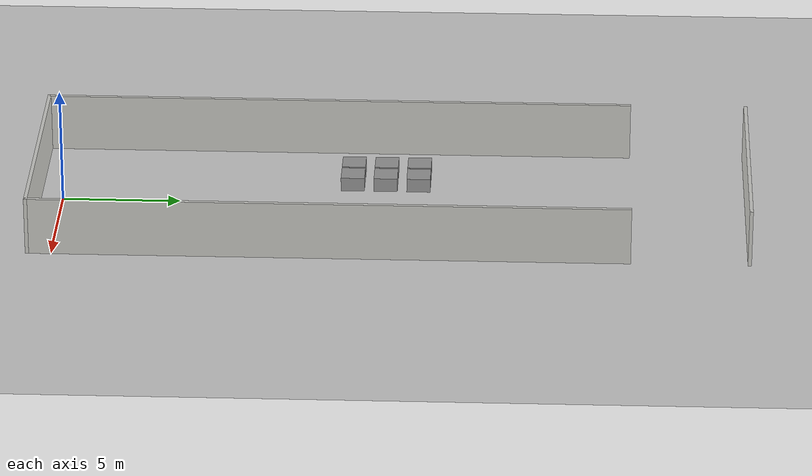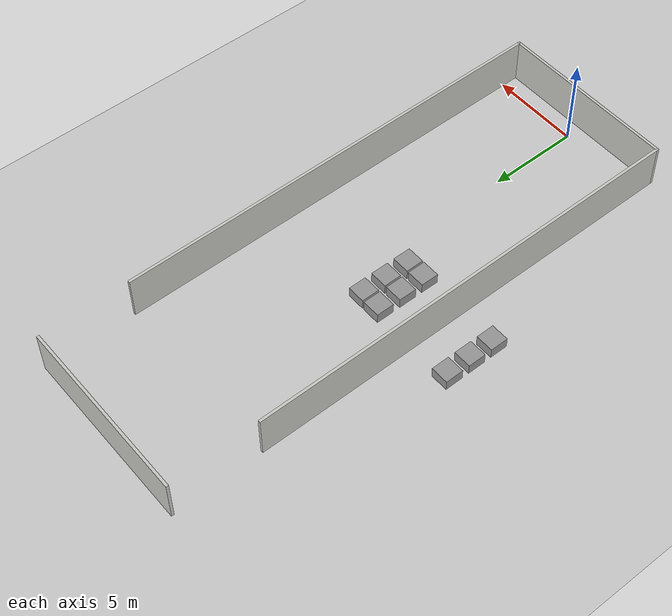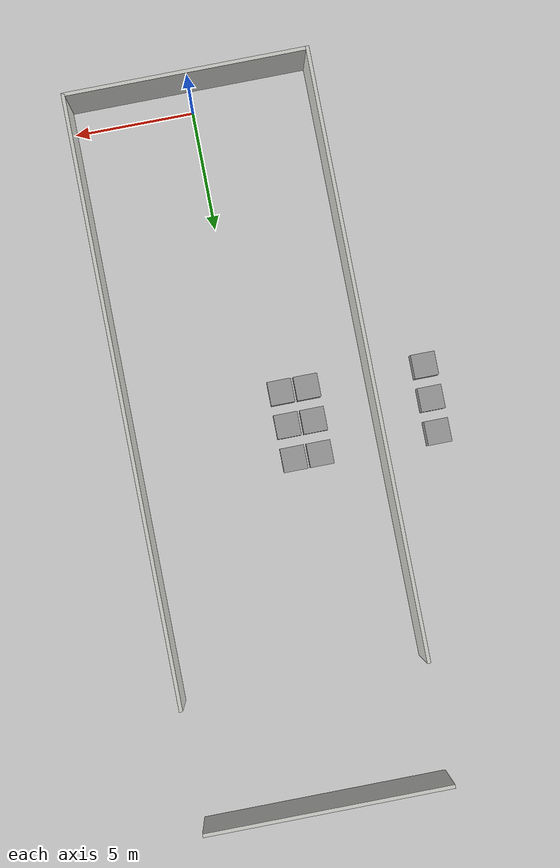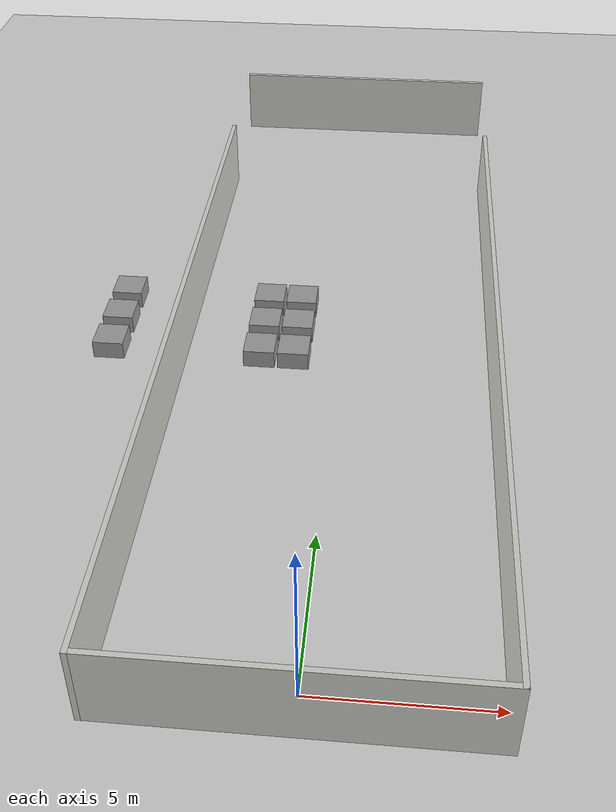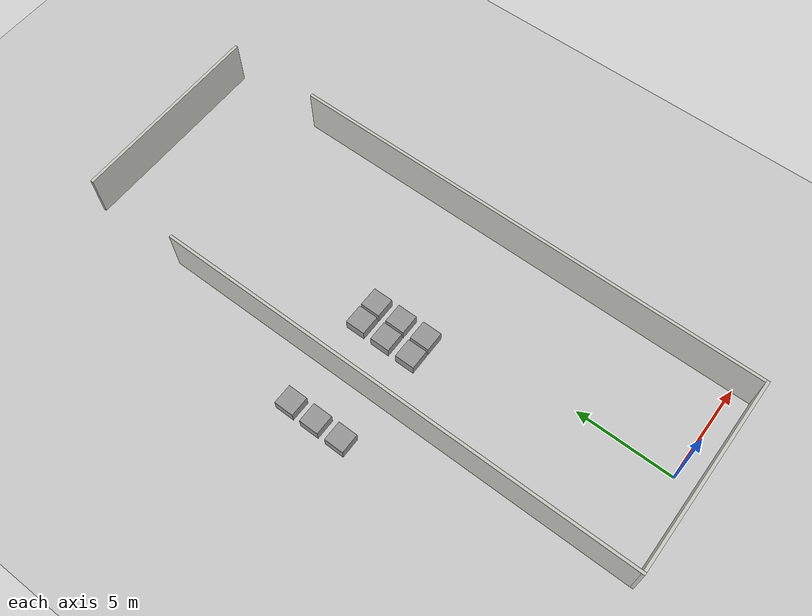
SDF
<sdf version="1.6">
 <world name="default">
  <model name="ground_plane">
   <static>1</static>
   <link name="link">
    <collision name="collision">
     <geometry><plane><normal>0 0 1</normal><size>100 100</size></plane></geometry>
     <surface>
      <contact><collide_bitmask>65535</collide_bitmask></contact>
      <friction><ode><mu>100</mu><mu2>50</mu2></ode></friction>
     </surface>
    </collision>
    <visual name="visual">
     <cast_shadows>0</cast_shadows>
     <geometry><plane><normal>0 0 1</normal><size>100 100</size></plane></geometry>
     <material>
      <script><uri>file://media/materials/scripts/gazebo.material</uri><name>Gazebo/Grey</name></script>
     </material>
    </visual>
   </link>
  </model>
  <model name="Estufa-objetos">
   <link name="link_0_clone_clone_26">
    <inertial>
     <mass>1</mass>
     <inertia>
      <ixx>0.166667</ixx>
      <ixy>0</ixy>
      <ixz>0</ixz>
      <iyy>0.166667</iyy>
      <iyz>0</iyz>
      <izz>0.166667</izz>
     </inertia>
    </inertial>
    <pose>-1.4 7.3 0.5 0 -0 0</pose>
    <visual name="visual">
     <geometry><box><size>1 1 0.6</size></box></geometry>
     <material>
      <lighting>1</lighting>
      <script><uri>file://media/materials/scripts/gazebo.material</uri><name>Gazebo/Grey</name></script>
      <shader type="vertex"><normal_map>__default__</normal_map></shader>
      <ambient>0.3 0.3 0.3 1</ambient>
      <diffuse>0.7 0.7 0.7 1</diffuse>
      <specular>0.01 0.01 0.01 1</specular>
      <emissive>0 0 0 1</emissive>
     </material>
    </visual>
    <collision name="collision">
     <geometry><box><size>1 1 0.6</size></box></geometry>
     <surface>
      <friction>
       <ode><mu>1</mu><mu2>1</mu2><fdir1>0 0 0</fdir1><slip1>0</slip1><slip2>0</slip2></ode>
       <torsional>
        <coefficient>1</coefficient>
        <patch_radius>0</patch_radius>
        <surface_radius>0</surface_radius>
        <use_patch_radius>1</use_patch_radius>
        <ode><slip>0</slip></ode>
       </torsional>
      </friction>
      <bounce><restitution_coefficient>0</restitution_coefficient><threshold>1e+06</threshold></bounce>
      <contact>
       <collide_without_contact>0</collide_without_contact>
       <collide_without_contact_bitmask>1</collide_without_contact_bitmask>
       <collide_bitmask>1</collide_bitmask>
       <ode>
        <soft_cfm>0</soft_cfm>
        <soft_erp>0.2</soft_erp>
        <kp>1e+13</kp>
        <kd>1</kd>
        <max_vel>0.01</max_vel>
        <min_depth>0</min_depth>
       </ode>
       <bullet>
        <split_impulse>1</split_impulse>
        <split_impulse_penetration_threshold>-0.01</split_impulse_penetration_threshold>
        <soft_cfm>0</soft_cfm>
        <soft_erp>0.2</soft_erp>
        <kp>1e+13</kp>
        <kd>1</kd>
       </bullet>
      </contact>
     </surface>
    </collision>
   </link>
   <link name="link_0_clone_clone_27">
    <inertial>
     <mass>1</mass>
     <inertia>
      <ixx>0.166667</ixx>
      <ixy>0</ixy>
      <ixz>0</ixz>
      <iyy>0.166667</iyy>
      <iyz>0</iyz>
      <izz>0.166667</izz>
     </inertia>
    </inertial>
    <pose>-2.5 7.3 0.5 0 -0 0</pose>
    <visual name="visual">
     <geometry><box><size>1 1 0.6</size></box></geometry>
     <material>
      <lighting>1</lighting>
      <script><uri>file://media/materials/scripts/gazebo.material</uri><name>Gazebo/Grey</name></script>
      <shader type="vertex"><normal_map>__default__</normal_map></shader>
      <ambient>0.3 0.3 0.3 1</ambient>
      <diffuse>0.7 0.7 0.7 1</diffuse>
      <specular>0.01 0.01 0.01 1</specular>
      <emissive>0 0 0 1</emissive>
     </material>
    </visual>
    <collision name="collision">
     <geometry><box><size>1 1 0.6</size></box></geometry>
     <surface>
      <friction>
       <ode><mu>1</mu><mu2>1</mu2><fdir1>0 0 0</fdir1><slip1>0</slip1><slip2>0</slip2></ode>
       <torsional>
        <coefficient>1</coefficient>
        <patch_radius>0</patch_radius>
        <surface_radius>0</surface_radius>
        <use_patch_radius>1</use_patch_radius>
        <ode><slip>0</slip></ode>
       </torsional>
      </friction>
      <bounce><restitution_coefficient>0</restitution_coefficient><threshold>1e+06</threshold></bounce>
      <contact>
       <collide_without_contact>0</collide_without_contact>
       <collide_without_contact_bitmask>1</collide_without_contact_bitmask>
       <collide_bitmask>1</collide_bitmask>
       <ode>
        <soft_cfm>0</soft_cfm>
        <soft_erp>0.2</soft_erp>
        <kp>1e+13</kp>
        <kd>1</kd>
        <max_vel>0.01</max_vel>
        <min_depth>0</min_depth>
       </ode>
       <bullet>
        <split_impulse>1</split_impulse>
        <split_impulse_penetration_threshold>-0.01</split_impulse_penetration_threshold>
        <soft_cfm>0</soft_cfm>
        <soft_erp>0.2</soft_erp>
        <kp>1e+13</kp>
        <kd>1</kd>
       </bullet>
      </contact>
     </surface>
    </collision>
   </link>
   <link name="link_0_clone_clone_30">
    <inertial>
     <mass>1</mass>
     <inertia>
      <ixx>0.166667</ixx>
      <ixy>0</ixy>
      <ixz>0</ixz>
      <iyy>0.166667</iyy>
      <iyz>0</iyz>
      <izz>0.166667</izz>
     </inertia>
    </inertial>
    <pose>-1.4 8.7 0.5 0 -0 0</pose>
    <visual name="visual">
     <geometry><box><size>1 1 0.6</size></box></geometry>
     <material>
      <lighting>1</lighting>
      <script><uri>file://media/materials/scripts/gazebo.material</uri><name>Gazebo/Grey</name></script>
      <shader type="vertex"><normal_map>__default__</normal_map></shader>
      <ambient>0.3 0.3 0.3 1</ambient>
      <diffuse>0.7 0.7 0.7 1</diffuse>
      <specular>0.01 0.01 0.01 1</specular>
      <emissive>0 0 0 1</emissive>
     </material>
    </visual>
    <collision name="collision">
     <geometry><box><size>1 1 0.6</size></box></geometry>
     <surface>
      <friction>
       <ode><mu>1</mu><mu2>1</mu2><fdir1>0 0 0</fdir1><slip1>0</slip1><slip2>0</slip2></ode>
       <torsional>
        <coefficient>1</coefficient>
        <patch_radius>0</patch_radius>
        <surface_radius>0</surface_radius>
        <use_patch_radius>1</use_patch_radius>
        <ode><slip>0</slip></ode>
       </torsional>
      </friction>
      <bounce><restitution_coefficient>0</restitution_coefficient><threshold>1e+06</threshold></bounce>
      <contact>
       <collide_without_contact>0</collide_without_contact>
       <collide_without_contact_bitmask>1</collide_without_contact_bitmask>
       <collide_bitmask>1</collide_bitmask>
       <ode>
        <soft_cfm>0</soft_cfm>
        <soft_erp>0.2</soft_erp>
        <kp>1e+13</kp>
        <kd>1</kd>
        <max_vel>0.01</max_vel>
        <min_depth>0</min_depth>
       </ode>
       <bullet>
        <split_impulse>1</split_impulse>
        <split_impulse_penetration_threshold>-0.01</split_impulse_penetration_threshold>
        <soft_cfm>0</soft_cfm>
        <soft_erp>0.2</soft_erp>
        <kp>1e+13</kp>
        <kd>1</kd>
       </bullet>
      </contact>
     </surface>
    </collision>
   </link>
   <link name="link_0_clone_clone_31">
    <inertial>
     <mass>1</mass>
     <inertia>
      <ixx>0.166667</ixx>
      <ixy>0</ixy>
      <ixz>0</ixz>
      <iyy>0.166667</iyy>
      <iyz>0</iyz>
      <izz>0.166667</izz>
     </inertia>
    </inertial>
    <pose>-2.5 8.7 0.5 0 -0 0</pose>
    <visual name="visual">
     <geometry><box><size>1 1 0.6</size></box></geometry>
     <material>
      <lighting>1</lighting>
      <script><uri>file://media/materials/scripts/gazebo.material</uri><name>Gazebo/Grey</name></script>
      <shader type="vertex"><normal_map>__default__</normal_map></shader>
      <ambient>0.3 0.3 0.3 1</ambient>
      <diffuse>0.7 0.7 0.7 1</diffuse>
      <specular>0.01 0.01 0.01 1</specular>
      <emissive>0 0 0 1</emissive>
     </material>
    </visual>
    <collision name="collision">
     <geometry><box><size>1 1 0.6</size></box></geometry>
     <surface>
      <friction>
       <ode><mu>1</mu><mu2>1</mu2><fdir1>0 0 0</fdir1><slip1>0</slip1><slip2>0</slip2></ode>
       <torsional>
        <coefficient>1</coefficient>
        <patch_radius>0</patch_radius>
        <surface_radius>0</surface_radius>
        <use_patch_radius>1</use_patch_radius>
        <ode><slip>0</slip></ode>
       </torsional>
      </friction>
      <bounce><restitution_coefficient>0</restitution_coefficient><threshold>1e+06</threshold></bounce>
      <contact>
       <collide_without_contact>0</collide_without_contact>
       <collide_without_contact_bitmask>1</collide_without_contact_bitmask>
       <collide_bitmask>1</collide_bitmask>
       <ode>
        <soft_cfm>0</soft_cfm>
        <soft_erp>0.2</soft_erp>
        <kp>1e+13</kp>
        <kd>1</kd>
        <max_vel>0.01</max_vel>
        <min_depth>0</min_depth>
       </ode>
       <bullet>
        <split_impulse>1</split_impulse>
        <split_impulse_penetration_threshold>-0.01</split_impulse_penetration_threshold>
        <soft_cfm>0</soft_cfm>
        <soft_erp>0.2</soft_erp>
        <kp>1e+13</kp>
        <kd>1</kd>
       </bullet>
      </contact>
     </surface>
    </collision>
   </link>
   <link name="link_0_clone_clone_34">
    <inertial>
     <mass>1</mass>
     <inertia>
      <ixx>0.166667</ixx>
      <ixy>0</ixy>
      <ixz>0</ixz>
      <iyy>0.166667</iyy>
      <iyz>0</iyz>
      <izz>0.166667</izz>
     </inertia>
    </inertial>
    <pose>-1.4 10.1 0.5 0 -0 0</pose>
    <visual name="visual">
     <geometry><box><size>1 1 0.6</size></box></geometry>
     <material>
      <lighting>1</lighting>
      <script><uri>file://media/materials/scripts/gazebo.material</uri><name>Gazebo/Grey</name></script>
      <shader type="vertex"><normal_map>__default__</normal_map></shader>
      <ambient>0.3 0.3 0.3 1</ambient>
      <diffuse>0.7 0.7 0.7 1</diffuse>
      <specular>0.01 0.01 0.01 1</specular>
      <emissive>0 0 0 1</emissive>
     </material>
    </visual>
    <collision name="collision">
     <geometry><box><size>1 1 0.6</size></box></geometry>
     <surface>
      <friction>
       <ode><mu>1</mu><mu2>1</mu2><fdir1>0 0 0</fdir1><slip1>0</slip1><slip2>0</slip2></ode>
       <torsional>
        <coefficient>1</coefficient>
        <patch_radius>0</patch_radius>
        <surface_radius>0</surface_radius>
        <use_patch_radius>1</use_patch_radius>
        <ode><slip>0</slip></ode>
       </torsional>
      </friction>
      <bounce><restitution_coefficient>0</restitution_coefficient><threshold>1e+06</threshold></bounce>
      <contact>
       <collide_without_contact>0</collide_without_contact>
       <collide_without_contact_bitmask>1</collide_without_contact_bitmask>
       <collide_bitmask>1</collide_bitmask>
       <ode>
        <soft_cfm>0</soft_cfm>
        <soft_erp>0.2</soft_erp>
        <kp>1e+13</kp>
        <kd>1</kd>
        <max_vel>0.01</max_vel>
        <min_depth>0</min_depth>
       </ode>
       <bullet>
        <split_impulse>1</split_impulse>
        <split_impulse_penetration_threshold>-0.01</split_impulse_penetration_threshold>
        <soft_cfm>0</soft_cfm>
        <soft_erp>0.2</soft_erp>
        <kp>1e+13</kp>
        <kd>1</kd>
       </bullet>
      </contact>
     </surface>
    </collision>
   </link>
   <link name="link_0_clone_clone_35">
    <inertial>
     <mass>1</mass>
     <inertia>
      <ixx>0.166667</ixx>
      <ixy>0</ixy>
      <ixz>0</ixz>
      <iyy>0.166667</iyy>
      <iyz>0</iyz>
      <izz>0.166667</izz>
     </inertia>
    </inertial>
    <pose>-2.5 10.1 0.5 0 -0 0</pose>
    <visual name="visual">
     <geometry><box><size>1 1 0.6</size></box></geometry>
     <material>
      <lighting>1</lighting>
      <script><uri>file://media/materials/scripts/gazebo.material</uri><name>Gazebo/Grey</name></script>
      <shader type="vertex"><normal_map>__default__</normal_map></shader>
      <ambient>0.3 0.3 0.3 1</ambient>
      <diffuse>0.7 0.7 0.7 1</diffuse>
      <specular>0.01 0.01 0.01 1</specular>
      <emissive>0 0 0 1</emissive>
     </material>
    </visual>
    <collision name="collision">
     <geometry><box><size>1 1 0.6</size></box></geometry>
     <surface>
      <friction>
       <ode><mu>1</mu><mu2>1</mu2><fdir1>0 0 0</fdir1><slip1>0</slip1><slip2>0</slip2></ode>
       <torsional>
        <coefficient>1</coefficient>
        <patch_radius>0</patch_radius>
        <surface_radius>0</surface_radius>
        <use_patch_radius>1</use_patch_radius>
        <ode><slip>0</slip></ode>
       </torsional>
      </friction>
      <bounce><restitution_coefficient>0</restitution_coefficient><threshold>1e+06</threshold></bounce>
      <contact>
       <collide_without_contact>0</collide_without_contact>
       <collide_without_contact_bitmask>1</collide_without_contact_bitmask>
       <collide_bitmask>1</collide_bitmask>
       <ode>
        <soft_cfm>0</soft_cfm>
        <soft_erp>0.2</soft_erp>
        <kp>1e+13</kp>
        <kd>1</kd>
        <max_vel>0.01</max_vel>
        <min_depth>0</min_depth>
       </ode>
       <bullet>
        <split_impulse>1</split_impulse>
        <split_impulse_penetration_threshold>-0.01</split_impulse_penetration_threshold>
        <soft_cfm>0</soft_cfm>
        <soft_erp>0.2</soft_erp>
        <kp>1e+13</kp>
        <kd>1</kd>
       </bullet>
      </contact>
     </surface>
    </collision>
   </link>
   <static>1</static>
   <pose>0.033468 4.9867 0 0 -0 0</pose>
  </model>
  <model name="Estufa_2">
   <link name="Wall_0">
    <pose>-5 -2.5 0 0 -0 1.5708</pose>
    <inertial>
     <mass>1</mass>
     <inertia><ixx>1</ixx><ixy>0</ixy><ixz>0</ixz><iyy>1</iyy><iyz>0</iyz><izz>1</izz></inertia>
    </inertial>
    <visual name="Wall_0_Visual">
     <pose>0 0 1.25 0 -0 0</pose>
     <geometry><box><size>25.15 0.15 2.5</size></box></geometry>
     <material>
      <script><uri>file://media/materials/scripts/gazebo.material</uri><name>Gazebo/CeilingTiled</name></script>
      <ambient>0.333 0.341 0.325 1</ambient>
      <shader type="vertex"><normal_map>__default__</normal_map></shader>
      <diffuse>1 1 1 1</diffuse>
      <specular>0 0 0 1</specular>
      <emissive>0 0 0 1</emissive>
     </material>
     <meta><layer>0</layer></meta>
    </visual>
    <collision name="Wall_0_Collision">
     <pose>0 0 1.25 0 -0 0</pose>
     <geometry><box><size>25.15 0.15 2.5</size></box></geometry>
     <surface>
      <friction>
       <ode><mu>1</mu><mu2>1</mu2><fdir1>0 0 0</fdir1><slip1>0</slip1><slip2>0</slip2></ode>
       <torsional>
        <coefficient>1</coefficient>
        <patch_radius>0</patch_radius>
        <surface_radius>0</surface_radius>
        <use_patch_radius>1</use_patch_radius>
        <ode><slip>0</slip></ode>
       </torsional>
      </friction>
      <bounce><restitution_coefficient>0</restitution_coefficient><threshold>1e+06</threshold></bounce>
      <contact>
       <collide_without_contact>0</collide_without_contact>
       <collide_without_contact_bitmask>1</collide_without_contact_bitmask>
       <collide_bitmask>1</collide_bitmask>
       <ode>
        <soft_cfm>0</soft_cfm>
        <soft_erp>0.2</soft_erp>
        <kp>1e+13</kp>
        <kd>1</kd>
        <max_vel>0.01</max_vel>
        <min_depth>0</min_depth>
       </ode>
       <bullet>
        <split_impulse>1</split_impulse>
        <split_impulse_penetration_threshold>-0.01</split_impulse_penetration_threshold>
        <soft_cfm>0</soft_cfm>
        <soft_erp>0.2</soft_erp>
        <kp>1e+13</kp>
        <kd>1</kd>
       </bullet>
      </contact>
     </surface>
    </collision>
   </link>
   <link name="Wall_1">
    <pose>0 15 0 0 -0 0</pose>
    <inertial>
     <mass>1</mass>
     <inertia><ixx>1</ixx><ixy>0</ixy><ixz>0</ixz><iyy>1</iyy><iyz>0</iyz><izz>1</izz></inertia>
    </inertial>
    <visual name="Wall_1_Visual">
     <pose>0 0 1.25 0 -0 0</pose>
     <geometry><box><size>10.15 0.15 2.5</size></box></geometry>
     <material>
      <script><uri>file://media/materials/scripts/gazebo.material</uri><name>Gazebo/CeilingTiled</name></script>
      <ambient>0.333 0.341 0.325 1</ambient>
      <shader type="vertex"><normal_map>__default__</normal_map></shader>
     </material>
     <meta><layer>0</layer></meta>
    </visual>
    <collision name="Wall_1_Collision">
     <pose>0 0 1.25 0 -0 0</pose>
     <geometry><box><size>10.15 0.15 2.5</size></box></geometry>
     <surface>
      <friction>
       <ode><mu>1</mu><mu2>1</mu2><fdir1>0 0 0</fdir1><slip1>0</slip1><slip2>0</slip2></ode>
       <torsional>
        <coefficient>1</coefficient>
        <patch_radius>0</patch_radius>
        <surface_radius>0</surface_radius>
        <use_patch_radius>1</use_patch_radius>
        <ode><slip>0</slip></ode>
       </torsional>
      </friction>
      <bounce><restitution_coefficient>0</restitution_coefficient><threshold>1e+06</threshold></bounce>
      <contact>
       <collide_without_contact>0</collide_without_contact>
       <collide_without_contact_bitmask>1</collide_without_contact_bitmask>
       <collide_bitmask>1</collide_bitmask>
       <ode>
        <soft_cfm>0</soft_cfm>
        <soft_erp>0.2</soft_erp>
        <kp>1e+13</kp>
        <kd>1</kd>
        <max_vel>0.01</max_vel>
        <min_depth>0</min_depth>
       </ode>
       <bullet>
        <split_impulse>1</split_impulse>
        <split_impulse_penetration_threshold>-0.01</split_impulse_penetration_threshold>
        <soft_cfm>0</soft_cfm>
        <soft_erp>0.2</soft_erp>
        <kp>1e+13</kp>
        <kd>1</kd>
       </bullet>
      </contact>
     </surface>
    </collision>
   </link>
   <link name="Wall_2">
    <pose>5 -2.5 0 0 0 -1.5708</pose>
    <inertial>
     <mass>1</mass>
     <inertia><ixx>1</ixx><ixy>0</ixy><ixz>0</ixz><iyy>1</iyy><iyz>0</iyz><izz>1</izz></inertia>
    </inertial>
    <visual name="Wall_2_Visual">
     <pose>0 0 1.25 0 -0 0</pose>
     <geometry><box><size>25.15 0.15 2.5</size></box></geometry>
     <material>
      <script><uri>file://media/materials/scripts/gazebo.material</uri><name>Gazebo/CeilingTiled</name></script>
      <ambient>0.333 0.341 0.325 1</ambient>
      <shader type="vertex"><normal_map>__default__</normal_map></shader>
      <diffuse>1 1 1 1</diffuse>
      <specular>0 0 0 1</specular>
      <emissive>0 0 0 1</emissive>
     </material>
     <meta><layer>0</layer></meta>
    </visual>
    <collision name="Wall_2_Collision">
     <pose>0 0 1.25 0 -0 0</pose>
     <geometry><box><size>25.15 0.15 2.5</size></box></geometry>
     <surface>
      <friction>
       <ode><mu>1</mu><mu2>1</mu2><fdir1>0 0 0</fdir1><slip1>0</slip1><slip2>0</slip2></ode>
       <torsional>
        <coefficient>1</coefficient>
        <patch_radius>0</patch_radius>
        <surface_radius>0</surface_radius>
        <use_patch_radius>1</use_patch_radius>
        <ode><slip>0</slip></ode>
       </torsional>
      </friction>
      <bounce><restitution_coefficient>0</restitution_coefficient><threshold>1e+06</threshold></bounce>
      <contact>
       <collide_without_contact>0</collide_without_contact>
       <collide_without_contact_bitmask>1</collide_without_contact_bitmask>
       <collide_bitmask>1</collide_bitmask>
       <ode>
        <soft_cfm>0</soft_cfm>
        <soft_erp>0.2</soft_erp>
        <kp>1e+13</kp>
        <kd>1</kd>
        <max_vel>0.01</max_vel>
        <min_depth>0</min_depth>
       </ode>
       <bullet>
        <split_impulse>1</split_impulse>
        <split_impulse_penetration_threshold>-0.01</split_impulse_penetration_threshold>
        <soft_cfm>0</soft_cfm>
        <soft_erp>0.2</soft_erp>
        <kp>1e+13</kp>
        <kd>1</kd>
       </bullet>
      </contact>
     </surface>
    </collision>
   </link>
   <link name="Wall_3">
    <pose>0 -15 0 0 -0 3.14159</pose>
    <inertial>
     <mass>1</mass>
     <inertia><ixx>1</ixx><ixy>0</ixy><ixz>0</ixz><iyy>1</iyy><iyz>0</iyz><izz>1</izz></inertia>
    </inertial>
    <visual name="Wall_3_Visual">
     <pose>0 0 1.25 0 -0 0</pose>
     <geometry><box><size>10.15 0.15 2.5</size></box></geometry>
     <material>
      <script><uri>file://media/materials/scripts/gazebo.material</uri><name>Gazebo/CeilingTiled</name></script>
      <ambient>0.333 0.341 0.325 1</ambient>
      <shader type="vertex"><normal_map>__default__</normal_map></shader>
     </material>
     <meta><layer>0</layer></meta>
    </visual>
    <collision name="Wall_3_Collision">
     <pose>0 0 1.25 0 -0 0</pose>
     <geometry><box><size>10.15 0.15 2.5</size></box></geometry>
     <surface>
      <friction>
       <ode><mu>1</mu><mu2>1</mu2><fdir1>0 0 0</fdir1><slip1>0</slip1><slip2>0</slip2></ode>
       <torsional>
        <coefficient>1</coefficient>
        <patch_radius>0</patch_radius>
        <surface_radius>0</surface_radius>
        <use_patch_radius>1</use_patch_radius>
        <ode><slip>0</slip></ode>
       </torsional>
      </friction>
      <bounce><restitution_coefficient>0</restitution_coefficient><threshold>1e+06</threshold></bounce>
      <contact>
       <collide_without_contact>0</collide_without_contact>
       <collide_without_contact_bitmask>1</collide_without_contact_bitmask>
       <collide_bitmask>1</collide_bitmask>
       <ode>
        <soft_cfm>0</soft_cfm>
        <soft_erp>0.2</soft_erp>
        <kp>1e+13</kp>
        <kd>1</kd>
        <max_vel>0.01</max_vel>
        <min_depth>0</min_depth>
       </ode>
       <bullet>
        <split_impulse>1</split_impulse>
        <split_impulse_penetration_threshold>-0.01</split_impulse_penetration_threshold>
        <soft_cfm>0</soft_cfm>
        <soft_erp>0.2</soft_erp>
        <kp>1e+13</kp>
        <kd>1</kd>
       </bullet>
      </contact>
     </surface>
    </collision>
   </link>
   <static>1</static>
   <pose>0 14 0 0 -0 0</pose>
  </model>
  <model name="Estufa-objetos_1">
   <link name="link_0_clone_clone_24">
    <inertial>
     <mass>1</mass>
     <inertia>
      <ixx>0.166667</ixx>
      <ixy>0</ixy>
      <ixz>0</ixz>
      <iyy>0.166667</iyy>
      <iyz>0</iyz>
      <izz>0.166667</izz>
     </inertia>
    </inertial>
    <pose>2.5 7.3 0.5 0 -0 0</pose>
    <visual name="visual">
     <geometry><box><size>1 1 0.6</size></box></geometry>
     <material>
      <lighting>1</lighting>
      <script><uri>file://media/materials/scripts/gazebo.material</uri><name>Gazebo/Grey</name></script>
      <shader type="vertex"><normal_map>__default__</normal_map></shader>
      <ambient>0.3 0.3 0.3 1</ambient>
      <diffuse>0.7 0.7 0.7 1</diffuse>
      <specular>0.01 0.01 0.01 1</specular>
      <emissive>0 0 0 1</emissive>
     </material>
    </visual>
    <collision name="collision">
     <geometry><box><size>1 1 0.6</size></box></geometry>
     <surface>
      <friction>
       <ode><mu>1</mu><mu2>1</mu2><fdir1>0 0 0</fdir1><slip1>0</slip1><slip2>0</slip2></ode>
       <torsional>
        <coefficient>1</coefficient>
        <patch_radius>0</patch_radius>
        <surface_radius>0</surface_radius>
        <use_patch_radius>1</use_patch_radius>
        <ode><slip>0</slip></ode>
       </torsional>
      </friction>
      <bounce><restitution_coefficient>0</restitution_coefficient><threshold>1e+06</threshold></bounce>
      <contact>
       <collide_without_contact>0</collide_without_contact>
       <collide_without_contact_bitmask>1</collide_without_contact_bitmask>
       <collide_bitmask>1</collide_bitmask>
       <ode>
        <soft_cfm>0</soft_cfm>
        <soft_erp>0.2</soft_erp>
        <kp>1e+13</kp>
        <kd>1</kd>
        <max_vel>0.01</max_vel>
        <min_depth>0</min_depth>
       </ode>
       <bullet>
        <split_impulse>1</split_impulse>
        <split_impulse_penetration_threshold>-0.01</split_impulse_penetration_threshold>
        <soft_cfm>0</soft_cfm>
        <soft_erp>0.2</soft_erp>
        <kp>1e+13</kp>
        <kd>1</kd>
       </bullet>
      </contact>
     </surface>
    </collision>
   </link>
   <link name="link_0_clone_clone_28">
    <inertial>
     <mass>1</mass>
     <inertia>
      <ixx>0.166667</ixx>
      <ixy>0</ixy>
      <ixz>0</ixz>
      <iyy>0.166667</iyy>
      <iyz>0</iyz>
      <izz>0.166667</izz>
     </inertia>
    </inertial>
    <pose>2.5 8.7 0.5 0 -0 0</pose>
    <visual name="visual">
     <geometry><box><size>1 1 0.6</size></box></geometry>
     <material>
      <lighting>1</lighting>
      <script><uri>file://media/materials/scripts/gazebo.material</uri><name>Gazebo/Grey</name></script>
      <shader type="vertex"><normal_map>__default__</normal_map></shader>
      <ambient>0.3 0.3 0.3 1</ambient>
      <diffuse>0.7 0.7 0.7 1</diffuse>
      <specular>0.01 0.01 0.01 1</specular>
      <emissive>0 0 0 1</emissive>
     </material>
    </visual>
    <collision name="collision">
     <geometry><box><size>1 1 0.6</size></box></geometry>
     <surface>
      <friction>
       <ode><mu>1</mu><mu2>1</mu2><fdir1>0 0 0</fdir1><slip1>0</slip1><slip2>0</slip2></ode>
       <torsional>
        <coefficient>1</coefficient>
        <patch_radius>0</patch_radius>
        <surface_radius>0</surface_radius>
        <use_patch_radius>1</use_patch_radius>
        <ode><slip>0</slip></ode>
       </torsional>
      </friction>
      <bounce><restitution_coefficient>0</restitution_coefficient><threshold>1e+06</threshold></bounce>
      <contact>
       <collide_without_contact>0</collide_without_contact>
       <collide_without_contact_bitmask>1</collide_without_contact_bitmask>
       <collide_bitmask>1</collide_bitmask>
       <ode>
        <soft_cfm>0</soft_cfm>
        <soft_erp>0.2</soft_erp>
        <kp>1e+13</kp>
        <kd>1</kd>
        <max_vel>0.01</max_vel>
        <min_depth>0</min_depth>
       </ode>
       <bullet>
        <split_impulse>1</split_impulse>
        <split_impulse_penetration_threshold>-0.01</split_impulse_penetration_threshold>
        <soft_cfm>0</soft_cfm>
        <soft_erp>0.2</soft_erp>
        <kp>1e+13</kp>
        <kd>1</kd>
       </bullet>
      </contact>
     </surface>
    </collision>
   </link>
   <link name="link_0_clone_clone_32">
    <inertial>
     <mass>1</mass>
     <inertia>
      <ixx>0.166667</ixx>
      <ixy>0</ixy>
      <ixz>0</ixz>
      <iyy>0.166667</iyy>
      <iyz>0</iyz>
      <izz>0.166667</izz>
     </inertia>
    </inertial>
    <pose>2.5 10.1 0.5 0 -0 0</pose>
    <visual name="visual">
     <geometry><box><size>1 1 0.6</size></box></geometry>
     <material>
      <lighting>1</lighting>
      <script><uri>file://media/materials/scripts/gazebo.material</uri><name>Gazebo/Grey</name></script>
      <shader type="vertex"><normal_map>__default__</normal_map></shader>
      <ambient>0.3 0.3 0.3 1</ambient>
      <diffuse>0.7 0.7 0.7 1</diffuse>
      <specular>0.01 0.01 0.01 1</specular>
      <emissive>0 0 0 1</emissive>
     </material>
    </visual>
    <collision name="collision">
     <geometry><box><size>1 1 0.6</size></box></geometry>
     <surface>
      <friction>
       <ode><mu>1</mu><mu2>1</mu2><fdir1>0 0 0</fdir1><slip1>0</slip1><slip2>0</slip2></ode>
       <torsional>
        <coefficient>1</coefficient>
        <patch_radius>0</patch_radius>
        <surface_radius>0</surface_radius>
        <use_patch_radius>1</use_patch_radius>
        <ode><slip>0</slip></ode>
       </torsional>
      </friction>
      <bounce><restitution_coefficient>0</restitution_coefficient><threshold>1e+06</threshold></bounce>
      <contact>
       <collide_without_contact>0</collide_without_contact>
       <collide_without_contact_bitmask>1</collide_without_contact_bitmask>
       <collide_bitmask>1</collide_bitmask>
       <ode>
        <soft_cfm>0</soft_cfm>
        <soft_erp>0.2</soft_erp>
        <kp>1e+13</kp>
        <kd>1</kd>
        <max_vel>0.01</max_vel>
        <min_depth>0</min_depth>
       </ode>
       <bullet>
        <split_impulse>1</split_impulse>
        <split_impulse_penetration_threshold>-0.01</split_impulse_penetration_threshold>
        <soft_cfm>0</soft_cfm>
        <soft_erp>0.2</soft_erp>
        <kp>1e+13</kp>
        <kd>1</kd>
       </bullet>
      </contact>
     </surface>
    </collision>
   </link>
   <static>1</static>
   <pose>-9.89574 5.02017 0 0 -0 0</pose>
  </model>
 </world>
</sdf>
